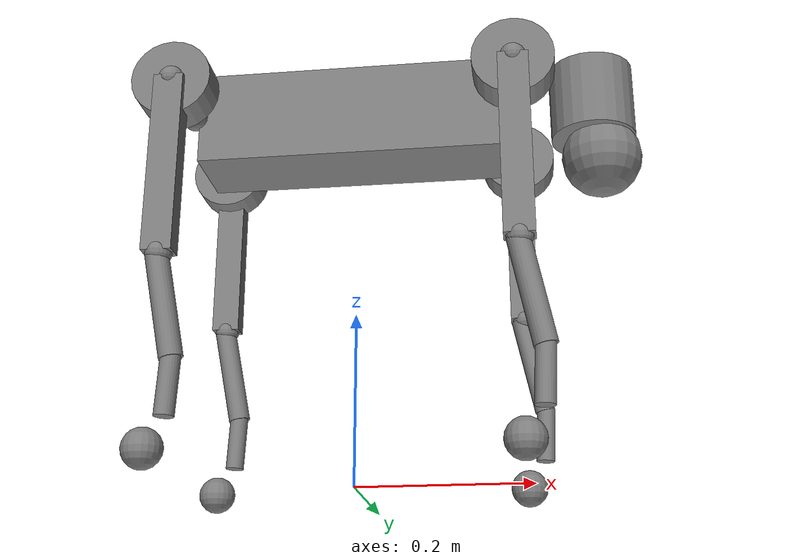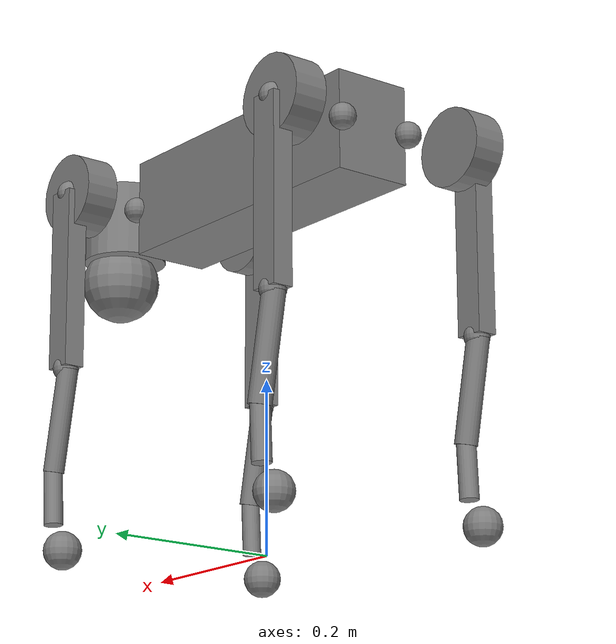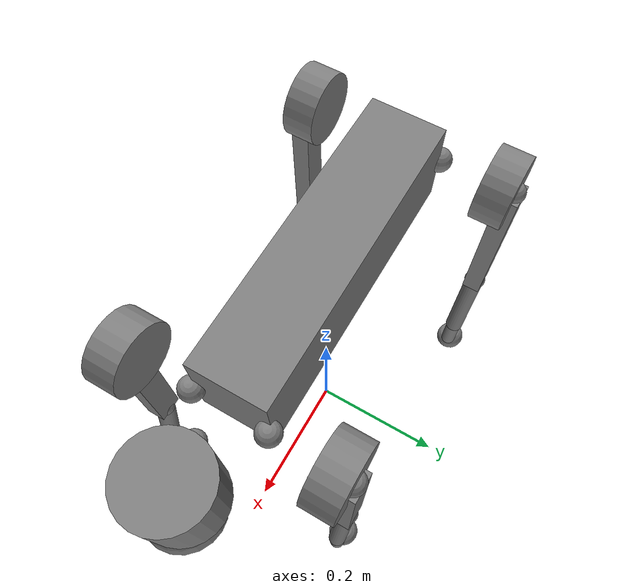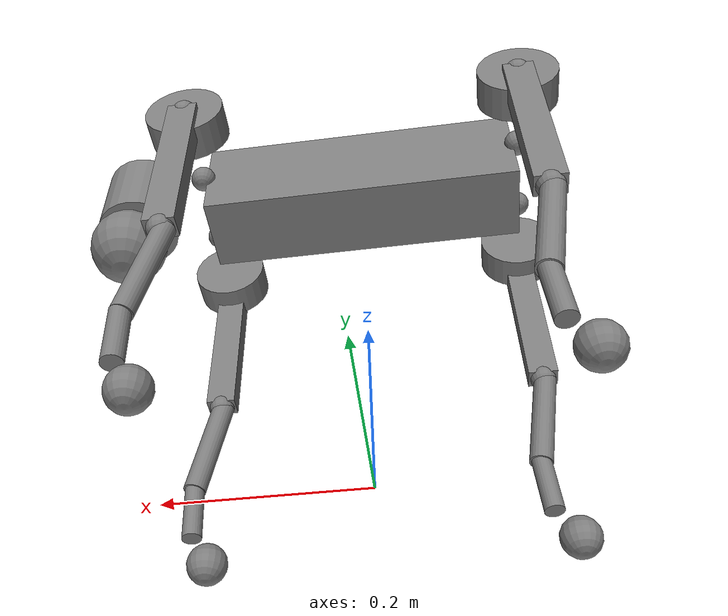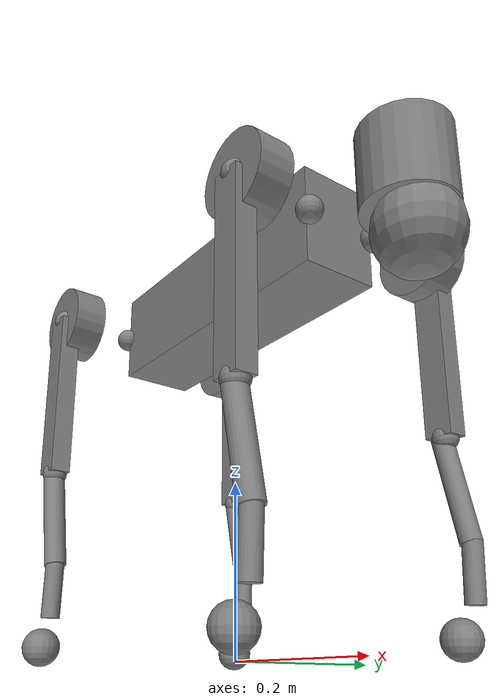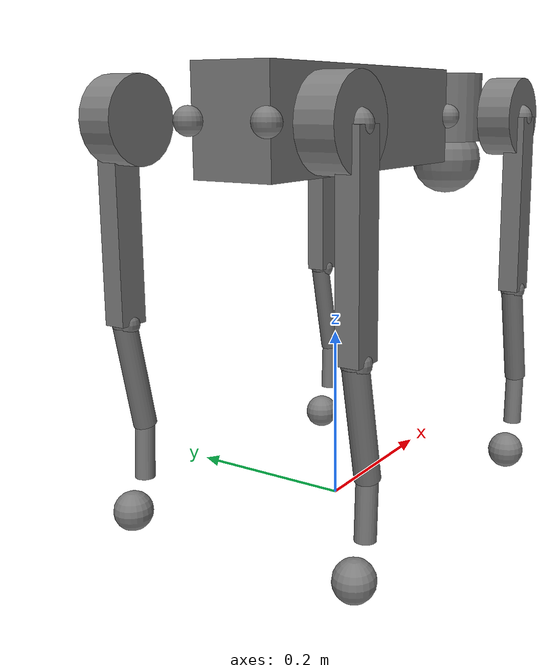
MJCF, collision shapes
<mujoco model="go2">
  <compiler angle="radian" meshdir="assets"/>

  <option cone="elliptic" impratio="10"/>

  <default>
    <default class="go2">
      <geom friction="0.6" margin="0.001" condim="1"/>
      <joint axis="0 1 0" damping="2" armature="0.01" frictionloss="0.2"/>
      <motor ctrlrange="-23.7 23.7"/>
      <default class="abduction">
        <joint axis="1 0 0" range="-1.0472 1.0472" limited="true"/>
      </default>
      <default class="hip">
        <default class="front_hip">
          <joint range="-2.4708 2.5907" ref="-0.9" limited="true"/>
        </default>
        <default class="back_hip">
          <joint range="-1.4236 3.6380" ref="-0.9" limited="true"/>
        </default>
      </default>
      <default class="knee">
        <joint range="-0.9227 0.9622" ref="1.8" limited="true"/>
        <motor ctrlrange="-45.43 45.43"/>
      </default>
      <default class="visual">
        <geom type="mesh" contype="0" conaffinity="0" group="2"/>
      </default>
      <default class="collision">
        <geom group="3"/>
        <default class="foot">
          <geom size="0.022" pos="-0.002 0 -0.213" priority="1" solimp="0.015 1 0.031" condim="6"
                friction="0.8 0.02 0.01"/>
        </default>
      </default>
    </default>
  </default>

  <asset>
    <material name="metal" rgba=".9 .95 .95 1"/>
    <material name="black" rgba="0 0 0 1"/>
    <material name="white" rgba="1 1 1 1"/>
    <material name="gray" rgba="0.671705 0.692426 0.774270 1"/>

    <mesh file="base_0.obj"/>
    <mesh file="base_1.obj"/>
    <mesh file="base_2.obj"/>
    <mesh file="base_3.obj"/>
    <mesh file="base_4.obj"/>
    <mesh file="hip_0.obj"/>
    <mesh file="hip_1.obj"/>
    <mesh file="thigh_0.obj"/>
    <mesh file="thigh_1.obj"/>
    <mesh file="thigh_mirror_0.obj"/>
    <mesh file="thigh_mirror_1.obj"/>
    <mesh file="calf_0.obj"/>
    <mesh file="calf_1.obj"/>
    <mesh file="calf_mirror_0.obj"/>
    <mesh file="calf_mirror_1.obj"/>
    <mesh file="foot.obj"/>
  </asset>

  <worldbody>
    <body name="trunk" pos="0 0 0.445" childclass="go2">
      <site name="trunk_site" type='sphere' size="0.03"/>
      <site name="head" pos="0.3 0 0" rgba="1 0 0 1" size="0.02" group="5"/>
      <inertial pos="0.021112 0 -0.005366" quat="-0.000543471 0.713435 -0.00173769 0.700719" mass="6.921"
                diaginertia="0.107027 0.0980771 0.0244531"/>
      <freejoint name="trunk"/>
      <geom mesh="base_0" material="black" class="visual"/>
      <geom mesh="base_1" material="black" class="visual"/>
      <geom mesh="base_2" material="black" class="visual"/>
      <geom mesh="base_3" material="white" class="visual"/>
      <geom mesh="base_4" material="gray" class="visual"/>
      <geom size="0.1881 0.04675 0.057" type="box" class="collision"/>
      <geom size="0.05 0.045" pos="0.285 0 0.01" type="cylinder" class="collision"/>
      <geom size="0.047" pos="0.293 0 -0.06" class="collision"/>
      <site name="imu" pos="-0.02557 0 0.04232"/>
      <body name="FR_hip" pos="0.1934 -0.0465 0">
        <site name="FR_hip_site" pos="0 0 0" type="sphere" size=".015"/>
        <inertial pos="-0.0054 -0.00194 -0.000105" quat="0.498237 0.505462 0.499245 0.497014" mass="0.678"
                  diaginertia="0.00088403 0.000596003 0.000479967"/>
        <joint name="FR_hip_joint" class="abduction"/>
        <geom mesh="hip_0" material="metal" class="visual" quat="4.63268e-05 1 0 0"/>
        <geom mesh="hip_1" material="gray" class="visual" quat="4.63268e-05 1 0 0"/>
        <geom size="0.046 0.02" pos="0 -0.08 0" quat="0.707107 0.707107 0 0" type="cylinder" class="collision"/>
        <body name="FR_thigh" pos="0 -0.0955 0">
          <site name="FR_thigh_site" pos="0 0 0" type="sphere" size=".015"/>
          <inertial pos="-0.00374 0.0223 -0.0327" quat="0.551623 -0.0200632 0.0847635 0.829533" mass="1.152"
                    diaginertia="0.00594973 0.00584149 0.000878787"/>
          <joint name="FR_thigh_joint" class="front_hip"/>
          <geom mesh="thigh_mirror_0" material="metal" class="visual"/>
          <geom mesh="thigh_mirror_1" material="gray" class="visual"/>
          <geom size="0.1065 0.01225 0.017" pos="0 0 -0.1065" quat="0.707107 0 0.707107 0" type="box" class="collision"/>
          <body name="FR_calf" pos="0 0 -0.213">
            <site name="FR_calf_site" pos="0 0 0" type="sphere" size=".015"/>
            <inertial pos="0.00629595 0.000622121 -0.141417" quat="0.703508 -0.00450087 0.00154099 0.710672"
                      mass="0.241352" diaginertia="0.0014901 0.00146356 5.31397e-05"/>
            <joint name="FR_calf_joint" class="knee"/>
            <geom mesh="calf_mirror_0" material="gray" class="visual"/>
            <geom mesh="calf_mirror_1" material="black" class="visual"/>
            <geom size="0.013 0.06" pos="0.01 0 -0.06" quat="0.995004 0 -0.0998334 0" type="cylinder" class="collision"/>
            <geom size="0.011 0.0325" pos="0.02 0 -0.148" quat="0.999688 0 0.0249974 0" type="cylinder" class="collision"/>
            <geom pos="0 0 -0.213" mesh="foot" class="visual" material="black"/>
            <geom name="FR_foot" class="foot"/>
            <site name="FR_foot_site" pos="-0.002 0 -0.213" type="sphere" size=".015"/>
          </body>
        </body>
      </body>
      <body name="FL_hip" pos="0.1934 0.0465 0">
        <site name="FL_hip_site" pos="0 0 0" type="sphere" size=".015"/>
        <inertial pos="-0.0054 0.00194 -0.000105" quat="0.497014 0.499245 0.505462 0.498237" mass="0.678"
                  diaginertia="0.00088403 0.000596003 0.000479967"/>
        <joint name="FL_hip_joint" class="abduction"/>
        <geom mesh="hip_0" material="metal" class="visual"/>
        <geom mesh="hip_1" material="gray" class="visual"/>
        <geom size="0.046 0.02" pos="0 0.08 0" quat="1 1 0 0" type="cylinder" class="collision"/>
        <body name="FL_thigh" pos="0 0.0955 0">
          <site name="FL_thigh_site" pos="0 0 0" type="sphere" size=".015"/>
          <inertial pos="-0.00374 -0.0223 -0.0327" quat="0.829533 0.0847635 -0.0200632 0.551623" mass="1.152"
                    diaginertia="0.00594973 0.00584149 0.000878787"/>
          <joint name="FL_thigh_joint" class="front_hip"/>
          <geom mesh="thigh_0" material="metal" class="visual"/>
          <geom mesh="thigh_1" material="gray" class="visual"/>
          <geom size="0.1065 0.01225 0.017" pos="0 0 -0.1065" quat="0.707107 0 0.707107 0" type="box" class="collision"/>
          <body name="FL_calf" pos="0 0 -0.213">
            <site name="FL_calf_site" pos="0 0 0" type="sphere" size=".015"/>
            <inertial pos="0.00629595 -0.000622121 -0.141417" quat="0.710672 0.00154099 -0.00450087 0.703508"
                      mass="0.241352" diaginertia="0.0014901 0.00146356 5.31397e-05"/>
            <joint name="FL_calf_joint" class="knee"/>
            <geom mesh="calf_0" material="gray" class="visual"/>
            <geom mesh="calf_1" material="black" class="visual"/>
            <geom size="0.012 0.06" pos="0.008 0 -0.06" quat="0.994493 0 -0.104807 0" type="cylinder" class="collision"/>
            <geom size="0.011 0.0325" pos="0.02 0 -0.148" quat="0.999688 0 0.0249974 0" type="cylinder" class="collision"/>
            <geom pos="0 0 -0.213" mesh="foot" class="visual" material="black"/>
            <geom name="FL_foot" class="foot"/>
            <site name="FL_foot_site" pos="-0.002 0 -0.213" type="sphere" size=".015"/>
          </body>
        </body>
      </body>
      <body name="RR_hip" pos="-0.1934 -0.0465 0">
        <site name="RR_hip_site" pos="0 0 0" type="sphere" size=".015"/>
        <inertial pos="0.0054 -0.00194 -0.000105" quat="0.499245 0.497014 0.498237 0.505462" mass="0.678"
                  diaginertia="0.00088403 0.000596003 0.000479967"/>
        <joint name="RR_hip_joint" class="abduction"/>
        <geom mesh="hip_0" material="metal" class="visual" quat="2.14617e-09 4.63268e-05 4.63268e-05 -1"/>
        <geom mesh="hip_1" material="gray" class="visual" quat="2.14617e-09 4.63268e-05 4.63268e-05 -1"/>
        <geom size="0.046 0.02" pos="0 -0.08 0" quat="0.707107 0.707107 0 0" type="cylinder" class="collision"/>
        <body name="RR_thigh" pos="0 -0.0955 0">
          <site name="RR_thigh_site" pos="0 0 0" type="sphere" size=".015"/>
          <inertial pos="-0.00374 0.0223 -0.0327" quat="0.551623 -0.0200632 0.0847635 0.829533" mass="1.152"
                    diaginertia="0.00594973 0.00584149 0.000878787"/>
          <joint name="RR_thigh_joint" class="back_hip"/>
          <geom mesh="thigh_mirror_0" material="metal" class="visual"/>
          <geom mesh="thigh_mirror_1" material="gray" class="visual"/>
          <geom size="0.1065 0.01225 0.017" pos="0 0 -0.1065" quat="0.707107 0 0.707107 0" type="box" class="collision"/>
          <body name="RR_calf" pos="0 0 -0.213">
            <site name="RR_calf_site" pos="0 0 0" type="sphere" size=".015"/>
            <inertial pos="0.00629595 0.000622121 -0.141417" quat="0.703508 -0.00450087 0.00154099 0.710672"
                      mass="0.241352" diaginertia="0.0014901 0.00146356 5.31397e-05"/>
            <joint name="RR_calf_joint" class="knee"/>
            <geom mesh="calf_mirror_0" material="gray" class="visual"/>
            <geom mesh="calf_mirror_1" material="black" class="visual"/>
            <geom size="0.013 0.06" pos="0.01 0 -0.06" quat="0.995004 0 -0.0998334 0" type="cylinder" class="collision"/>
            <geom size="0.011 0.0325" pos="0.02 0 -0.148" quat="0.999688 0 0.0249974 0" type="cylinder" class="collision"/>
            <geom pos="0 0 -0.213" mesh="foot" class="visual" material="black"/>
            <geom name="RR_foot" class="foot"/>
            <site name="RR_foot_site" pos="-0.002 0 -0.213" type="sphere" size=".015"/>
          </body>
        </body>
      </body>
      <body name="RL_hip" pos="-0.1934 0.0465 0">
        <site name="RL_hip_site" pos="0 0 0" type="sphere" size=".015"/>
        <inertial pos="0.0054 0.00194 -0.000105" quat="0.505462 0.498237 0.497014 0.499245" mass="0.678"
                  diaginertia="0.00088403 0.000596003 0.000479967"/>
        <joint name="RL_hip_joint" class="abduction"/>
        <geom mesh="hip_0" material="metal" class="visual" quat="4.63268e-05 0 1 0"/>
        <geom mesh="hip_1" material="gray" class="visual" quat="4.63268e-05 0 1 0"/>
        <geom size="0.046 0.02" pos="0 0.08 0" quat="0.707107 0.707107 0 0" type="cylinder" class="collision"/>
        <body name="RL_thigh" pos="0 0.0955 0">
          <site name="RL_thigh_site" pos="0 0 0" type="sphere" size=".015"/>
          <inertial pos="-0.00374 -0.0223 -0.0327" quat="0.829533 0.0847635 -0.0200632 0.551623" mass="1.152"
                    diaginertia="0.00594973 0.00584149 0.000878787"/>
          <joint name="RL_thigh_joint" class="back_hip"/>
          <geom mesh="thigh_0" material="metal" class="visual"/>
          <geom mesh="thigh_1" material="gray" class="visual"/>
          <geom size="0.1065 0.01225 0.017" pos="0 0 -0.1065" quat="0.707107 0 0.707107 0" type="box" class="collision"/>
          <body name="RL_calf" pos="0 0 -0.213">
            <site name="RL_calf_site" pos="0 0 0" type="sphere" size=".015"/>
            <inertial pos="0.00629595 -0.000622121 -0.141417" quat="0.710672 0.00154099 -0.00450087 0.703508"
                      mass="0.241352" diaginertia="0.0014901 0.00146356 5.31397e-05"/>
            <joint name="RL_calf_joint" class="knee"/>
            <geom mesh="calf_0" material="gray" class="visual"/>
            <geom mesh="calf_1" material="black" class="visual"/>
            <geom size="0.013 0.06" pos="0.01 0 -0.06" quat="0.995004 0 -0.0998334 0" type="cylinder" class="collision"/>
            <geom size="0.011 0.0325" pos="0.02 0 -0.148" quat="0.999688 0 0.0249974 0" type="cylinder" class="collision"/>
            <geom pos="0 0 -0.213" mesh="foot" class="visual" material="black"/>
            <geom name="RL_foot" class="foot"/>
            <site name="RL_foot_site" pos="-0.002 0 -0.213" type="sphere" size=".015"/>
          </body>
        </body>
      </body>
    </body>
  </worldbody>
</mujoco>
